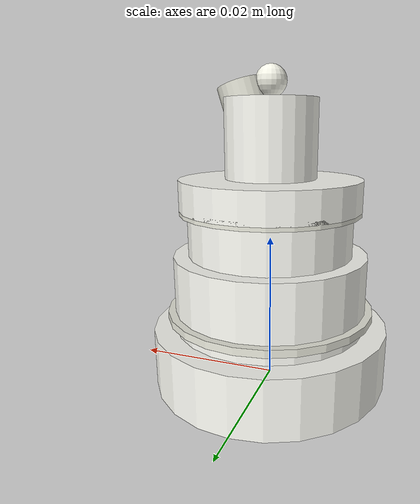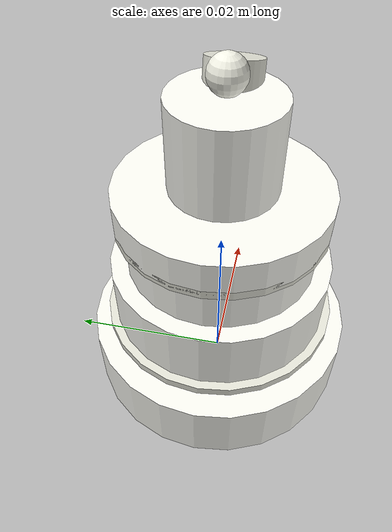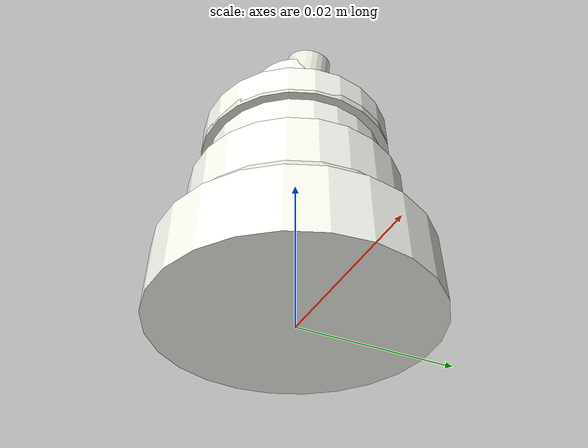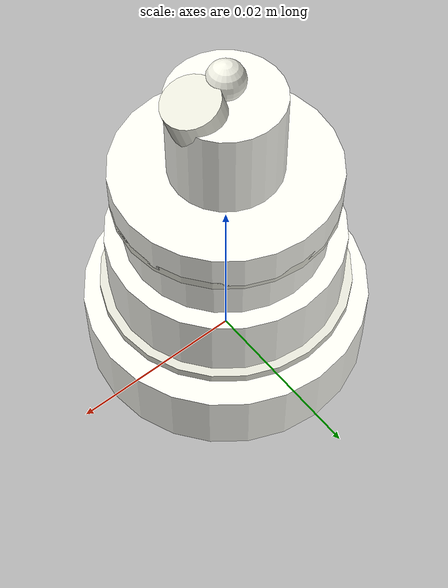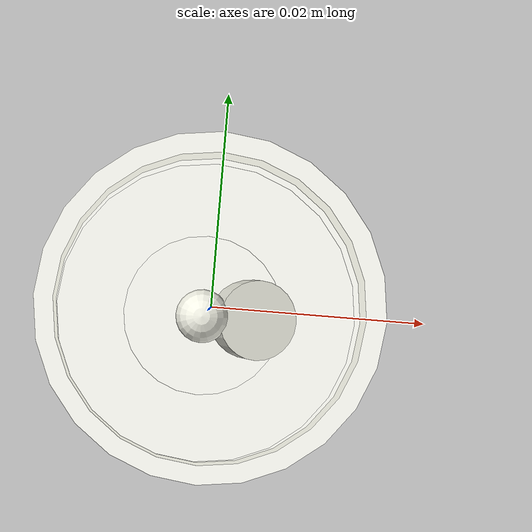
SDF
<?xml version="1.0" ?>
<sdf version="1.6">
  <model name="chess_bishop_white">
    <link name="link">
      <pose>0 0 0 0 0 0</pose>

      <inertial>
        <mass>0.06</mass>
        <pose>0 0 0.016 0 0 0</pose>
        <inertia>
          <ixx>0.00002</ixx>
          <ixy>0</ixy>
          <ixz>0</ixz>
          <iyy>0.00002</iyy>
          <iyz>0</iyz>
          <izz>0.00001</izz>
        </inertia>
      </inertial>

      <!-- Base -->
      <collision name="base_collision">
        <pose>0 0 0.004 0 0 0</pose>
        <geometry>
          <cylinder>
            <radius>0.016</radius>
            <length>0.008</length>
          </cylinder>
        </geometry>
        <surface>
          <friction>
            <ode>
              <mu>0.8</mu>
              <mu2>0.8</mu2>
            </ode>
          </friction>
          <bounce>
            <restitution_coefficient>0.1</restitution_coefficient>
          </bounce>
        </surface>
      </collision>

      <!-- Main body (wider at bottom, narrower at top) -->
      <collision name="body_bottom_collision">
        <pose>0 0 0.012 0 0 0</pose>
        <geometry>
          <cylinder>
            <radius>0.013</radius>
            <length>0.012</length>
          </cylinder>
        </geometry>
      </collision>

      <collision name="body_middle_collision">
        <pose>0 0 0.020 0 0 0</pose>
        <geometry>
          <cylinder>
            <radius>0.011</radius>
            <length>0.008</length>
          </cylinder>
        </geometry>
      </collision>

      <!-- Mitre/Hat (distinctive pointed top) -->
      <collision name="mitre_base_collision">
        <pose>0 0 0.026 0 0 0</pose>
        <geometry>
          <cylinder>
            <radius>0.012</radius>
            <length>0.004</length>
          </cylinder>
        </geometry>
      </collision>

      <!-- Pointed tip -->
      <collision name="mitre_point_collision">
        <pose>0 0 0.032 0 0 0</pose>
        <geometry>
          <cylinder>
            <radius>0.006</radius>
            <length>0.012</length>
          </cylinder>
        </geometry>
      </collision>

      <!-- Diagonal cut at the top (distinctive bishop feature) -->
      <collision name="diagonal_cut_collision">
        <pose>0.003 0 0.036 0 0.3 0</pose>
        <geometry>
          <cylinder>
            <radius>0.003</radius>
            <length>0.008</length>
          </cylinder>
        </geometry>
      </collision>

      <!-- Cross at the very tip -->
      <collision name="cross_collision">
        <pose>0 0 0.040 0 0 0</pose>
        <geometry>
          <sphere>
            <radius>0.002</radius>
          </sphere>
        </geometry>
      </collision>

      <!-- Visuals -->
      <visual name="base_visual">
        <pose>0 0 0.004 0 0 0</pose>
        <geometry>
          <cylinder>
            <radius>0.016</radius>
            <length>0.008</length>
          </cylinder>
        </geometry>
        <material>
          <ambient>0.95 0.95 0.9 1</ambient>
          <diffuse>0.98 0.98 0.95 1</diffuse>
          <specular>0.4 0.4 0.4 1</specular>
        </material>
      </visual>

      <visual name="body_bottom_visual">
        <pose>0 0 0.012 0 0 0</pose>
        <geometry>
          <cylinder>
            <radius>0.013</radius>
            <length>0.012</length>
          </cylinder>
        </geometry>
        <material>
          <ambient>0.95 0.95 0.9 1</ambient>
          <diffuse>0.98 0.98 0.95 1</diffuse>
          <specular>0.4 0.4 0.4 1</specular>
        </material>
      </visual>

      <visual name="body_middle_visual">
        <pose>0 0 0.020 0 0 0</pose>
        <geometry>
          <cylinder>
            <radius>0.011</radius>
            <length>0.008</length>
          </cylinder>
        </geometry>
        <material>
          <ambient>0.95 0.95 0.9 1</ambient>
          <diffuse>0.98 0.98 0.95 1</diffuse>
          <specular>0.4 0.4 0.4 1</specular>
        </material>
      </visual>

      <visual name="mitre_base_visual">
        <pose>0 0 0.026 0 0 0</pose>
        <geometry>
          <cylinder>
            <radius>0.012</radius>
            <length>0.004</length>
          </cylinder>
        </geometry>
        <material>
          <ambient>0.95 0.95 0.9 1</ambient>
          <diffuse>0.98 0.98 0.95 1</diffuse>
          <specular>0.4 0.4 0.4 1</specular>
        </material>
      </visual>

      <visual name="mitre_point_visual">
        <pose>0 0 0.032 0 0 0</pose>
        <geometry>
          <cylinder>
            <radius>0.006</radius>
            <length>0.012</length>
          </cylinder>
        </geometry>
        <material>
          <ambient>0.95 0.95 0.9 1</ambient>
          <diffuse>0.98 0.98 0.95 1</diffuse>
          <specular>0.4 0.4 0.4 1</specular>
        </material>
      </visual>

      <visual name="diagonal_cut_visual">
        <pose>0.003 0 0.036 0 0.3 0</pose>
        <geometry>
          <cylinder>
            <radius>0.003</radius>
            <length>0.008</length>
          </cylinder>
        </geometry>
        <material>
          <ambient>0.85 0.85 0.8 1</ambient>
          <diffuse>0.9 0.9 0.85 1</diffuse>
          <specular>0.5 0.5 0.5 1</specular>
        </material>
      </visual>

      <visual name="cross_visual">
        <pose>0 0 0.040 0 0 0</pose>
        <geometry>
          <sphere>
            <radius>0.002</radius>
          </sphere>
        </geometry>
        <material>
          <ambient>0.9 0.9 0.85 1</ambient>
          <diffuse>0.95 0.95 0.9 1</diffuse>
          <specular>0.6 0.6 0.6 1</specular>
        </material>
      </visual>

      <!-- Decorative bands -->
      <visual name="band_1">
        <pose>0 0 0.010 0 0 0</pose>
        <geometry>
          <cylinder>
            <radius>0.014</radius>
            <length>0.001</length>
          </cylinder>
        </geometry>
        <material>
          <ambient>0.85 0.85 0.8 1</ambient>
          <diffuse>0.9 0.9 0.85 1</diffuse>
          <specular>0.3 0.3 0.3 1</specular>
        </material>
      </visual>

      <visual name="band_2">
        <pose>0 0 0.024 0 0 0</pose>
        <geometry>
          <cylinder>
            <radius>0.012</radius>
            <length>0.001</length>
          </cylinder>
        </geometry>
        <material>
          <ambient>0.85 0.85 0.8 1</ambient>
          <diffuse>0.9 0.9 0.85 1</diffuse>
          <specular>0.3 0.3 0.3 1</specular>
        </material>
      </visual>
    </link>
  </model>
</sdf>
